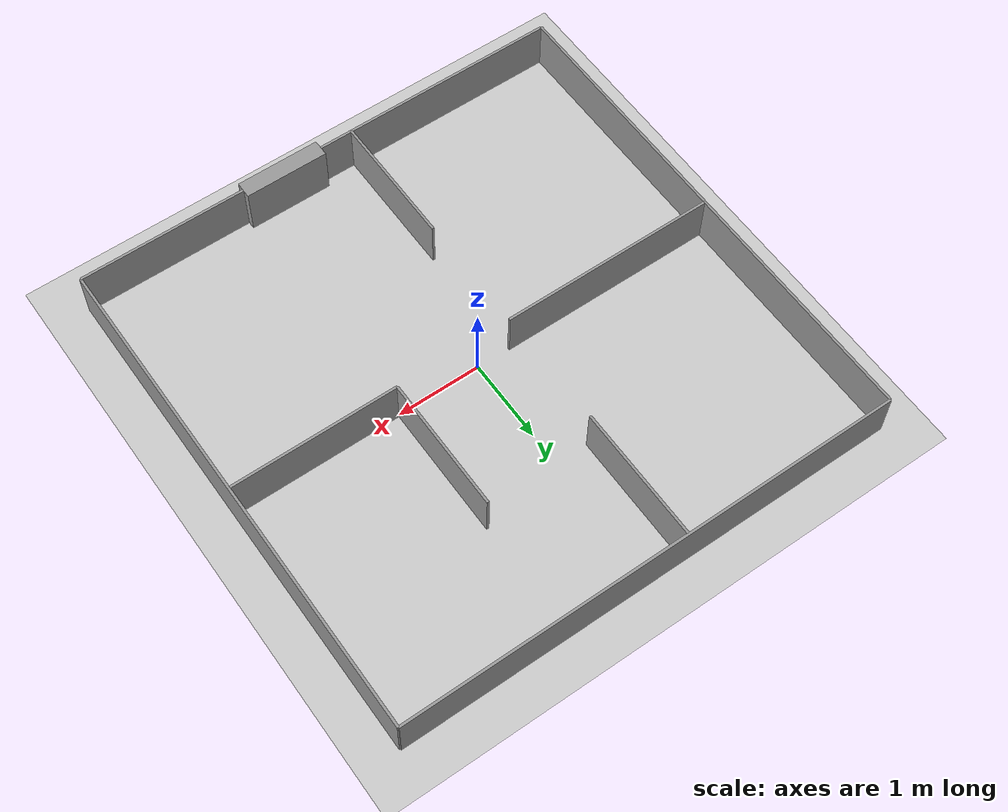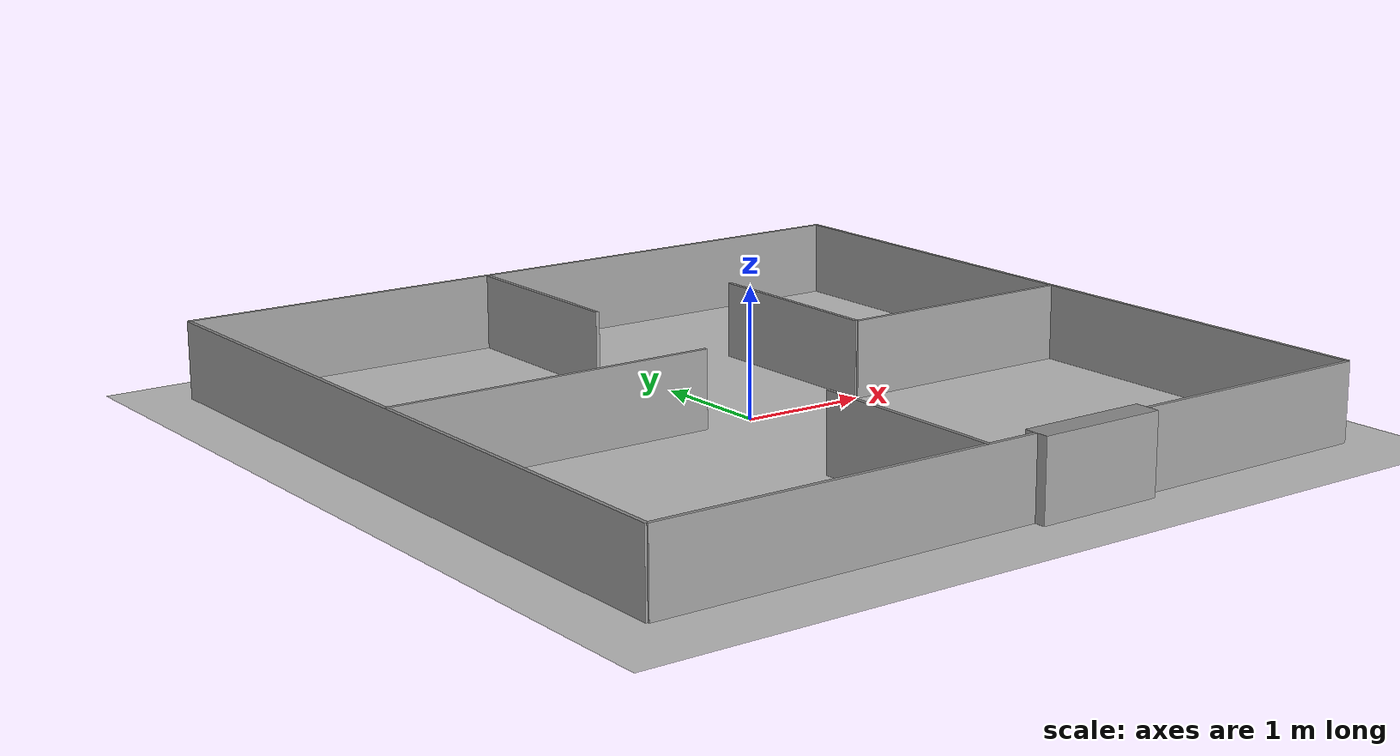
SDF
<?xml version="1.0" ?>

<sdf version="1.5">

  <world name="home-area">

    <!-- Engines: ode, bullet, simbody, dart-->

    <gui fullscreen='0'>
      <camera name='user_camera'>
        <pose frame=''>0 0 10 0 1.5708 0</pose>
        <view_controller>orbit</view_controller>
        <projection_type>perspective</projection_type>
      </camera>
    </gui>

    <physics type="ode">
      <max_step_size>0.001</max_step_size>
      <real_time_factor>1</real_time_factor>
      <real_time_update_rate>1000</real_time_update_rate>
      <gravity>0 0 -9.8</gravity>
    </physics>

    <include>
      <uri>model://sun</uri>
    </include>

    <include>
      <uri>model://ground_plane</uri>
    </include>

    <model name="home-area">
      <include>
        <uri>model://home-area</uri>
        <pose>0 0 0 0 0 0</pose>
      </include>
    </model>

  </world>

</sdf>

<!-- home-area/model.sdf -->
<sdf version='1.6'>
  <model name='home-area'>
    <pose frame=''>-0.022859 -0.01849 0 0 -0 0</pose>
    <link name='Door_0'>
      <collision name='Door_0_Collision'>
        <geometry>
          <box>
            <size>1 0.2 0.6</size>
          </box>
        </geometry>
        <pose frame=''>0 0 0.3 0 -0 0</pose>
      </collision>
      <visual name='Door_0_Visual'>
        <pose frame=''>0 0 0.3 0 -0 0</pose>
        <geometry>
          <box>
            <size>1 0.2 0.6</size>
          </box>
        </geometry>
        <material>
          <script>
            <uri>file://media/materials/scripts/gazebo.material</uri>
            <name>Gazebo/Grey</name>
          </script>
        </material>
      </visual>
      <pose frame=''>0.5 -3 0 0 0 0</pose>
    </link>
    <link name='Wall_0'>
      <collision name='Wall_0_Collision'>
        <geometry>
          <box>
            <size>2 0.03 0.6</size>
          </box>
        </geometry>
        <pose frame=''>0 0 0.3 0 -0 0</pose>
      </collision>
      <visual name='Wall_0_Visual'>
        <pose frame=''>0 0 0.3 0 -0 0</pose>
        <geometry>
          <box>
            <size>2 0.03 0.6</size>
          </box>
        </geometry>
        <material>
          <script>
            <uri>file://media/materials/scripts/gazebo.material</uri>
            <name>Gazebo/Grey</name>
          </script>
          <ambient>1 1 1 1</ambient>
        </material>
        <meta>
          <layer>0</layer>
        </meta>
      </visual>
      <pose frame=''>2 -3 0 0 0 3.14159</pose>
    </link>
    <link name='Wall_1'>
      <collision name='Wall_1_Collision'>
        <geometry>
          <box>
            <size>6 0.03 0.6</size>
          </box>
        </geometry>
        <pose frame=''>0 0 0.3 0 -0 0</pose>
      </collision>
      <visual name='Wall_1_Visual'>
        <pose frame=''>0 0 0.3 0 -0 0</pose>
        <geometry>
          <box>
            <size>6 0.03 0.6</size>
          </box>
        </geometry>
        <material>
          <script>
            <uri>file://media/materials/scripts/gazebo.material</uri>
            <name>Gazebo/Grey</name>
          </script>
          <ambient>1 1 1 1</ambient>
        </material>
        <meta>
          <layer>0</layer>
        </meta>
      </visual>
      <pose frame=''>3 0 0 0 0 -1.5708</pose>
    </link>
    <link name='Wall_10'>
      <collision name='Wall_10_Collision'>
        <geometry>
          <box>
            <size>2 0.03 0.6</size>
          </box>
        </geometry>
        <pose frame=''>0 0 0.3 0 -0 0</pose>
      </collision>
      <visual name='Wall_10_Visual'>
        <pose frame=''>0 0 0.3 0 -0 0</pose>
        <geometry>
          <box>
            <size>2 0.03 0.6</size>
          </box>
        </geometry>
        <material>
          <script>
            <uri>file://media/materials/scripts/gazebo.material</uri>
            <name>Gazebo/Grey</name>
          </script>
          <ambient>1 1 1 1</ambient>
        </material>
        <meta>
          <layer>0</layer>
        </meta>
      </visual>
      <pose frame=''>2 0 0 0 0 -3.14159</pose>
    </link>
    <link name='Wall_11'>
      <collision name='Wall_11_Collision'>
        <geometry>
          <box>
            <size>1.6 0.03 0.6</size>
          </box>
        </geometry>
        <pose frame=''>0 0 0.3 0 -0 0</pose>
      </collision>
      <visual name='Wall_11_Visual'>
        <pose frame=''>0 0 0.3 0 -0 0</pose>
        <geometry>
          <box>
            <size>1.6 0.03 0.6</size>
          </box>
        </geometry>
        <material>
          <script>
            <uri>file://media/materials/scripts/gazebo.material</uri>
            <name>Gazebo/Grey</name>
          </script>
          <ambient>1 1 1 1</ambient>
        </material>
        <meta>
          <layer>0</layer>
        </meta>
      </visual>
      <pose frame=''>1 0.8 0 0 0 1.5708</pose>
    </link>
    <link name='Wall_2'>
      <collision name='Wall_2_Collision'>
        <geometry>
          <box>
            <size>6 0.03 0.6</size>
          </box>
        </geometry>
        <pose frame=''>0 0 0.3 0 -0 0</pose>
      </collision>
      <visual name='Wall_2_Visual'>
        <pose frame=''>0 0 0.3 0 -0 0</pose>
        <geometry>
          <box>
            <size>6 0.03 0.6</size>
          </box>
        </geometry>
        <material>
          <script>
            <uri>file://media/materials/scripts/gazebo.material</uri>
            <name>Gazebo/Grey</name>
          </script>
          <ambient>1 1 1 1</ambient>
        </material>
        <meta>
          <layer>0</layer>
        </meta>
      </visual>
      <pose frame=''>0 3 0 0 0 0</pose>
    </link>
    <link name='Wall_20'>
      <collision name='Wall_20_Collision'>
        <geometry>
          <box>
            <size>1.6 0.03 0.6</size>
          </box>
        </geometry>
        <pose frame=''>0 0 0.3 0 -0 0</pose>
      </collision>
      <visual name='Wall_20_Visual'>
        <pose frame=''>0 0 0.3 0 -0 0</pose>
        <geometry>
          <box>
            <size>1.6 0.03 0.6</size>
          </box>
        </geometry>
        <material>
          <script>
            <uri>file://media/materials/scripts/gazebo.material</uri>
            <name>Gazebo/Grey</name>
          </script>
          <ambient>1 1 1 1</ambient>
        </material>
        <meta>
          <layer>0</layer>
        </meta>
      </visual>
      <pose frame=''>-0.4 2.2 0 0 0 1.5708</pose>
    </link>
    <link name='Wall_3'>
      <collision name='Wall_3_Collision'>
        <geometry>
          <box>
            <size>6 0.03 0.6</size>
          </box>
        </geometry>
        <pose frame=''>0 0 0.3 0 -0 0</pose>
      </collision>
      <visual name='Wall_3_Visual'>
        <pose frame=''>0 0 0.3 0 -0 0</pose>
        <geometry>
          <box>
            <size>6 0.03 0.6</size>
          </box>
        </geometry>
        <material>
          <script>
            <uri>file://media/materials/scripts/gazebo.material</uri>
            <name>Gazebo/Grey</name>
          </script>
          <ambient>1 1 1 1</ambient>
        </material>
        <meta>
          <layer>0</layer>
        </meta>
      </visual>
      <pose frame=''>-3 0 0 0 0 -1.5708</pose>
    </link>
    <link name='Wall_30'>
      <collision name='Wall_30_Collision'>
        <geometry>
          <box>
            <size>2.6 0.03 0.6</size>
          </box>
        </geometry>
        <pose frame=''>0 0 0.3 0 -0 0</pose>
      </collision>
      <visual name='Wall_30_Visual'>
        <pose frame=''>0 0 0.3 0 -0 0</pose>
        <geometry>
          <box>
            <size>2.6 0.03 0.6</size>
          </box>
        </geometry>
        <material>
          <script>
            <uri>file://media/materials/scripts/gazebo.material</uri>
            <name>Gazebo/Grey</name>
          </script>
          <ambient>1 1 1 1</ambient>
        </material>
        <meta>
          <layer>0</layer>
        </meta>
      </visual>
      <pose frame=''>-1.7 0 0 0 0 3.14159</pose>
    </link>
    <link name='Wall_4'>
      <collision name='Wall_4_Collision'>
        <geometry>
          <box>
            <size>3 0.03 0.6</size>
          </box>
        </geometry>
        <pose frame=''>0 0 0.3 0 -0 0</pose>
      </collision>
      <visual name='Wall_4_Visual'>
        <pose frame=''>0 0 0.3 0 -0 0</pose>
        <geometry>
          <box>
            <size>3 0.03 0.6</size>
          </box>
        </geometry>
        <material>
          <script>
            <uri>file://media/materials/scripts/gazebo.material</uri>
            <name>Gazebo/Grey</name>
          </script>
          <ambient>1 1 1 1</ambient>
        </material>
        <meta>
          <layer>0</layer>
        </meta>
      </visual>
      <pose frame=''>-1.5 -3 0 0 0 0</pose>
    </link>
    <link name='Wall_40'>
      <collision name='Wall_40_Collision'>
        <geometry>
          <box>
            <size>1.6 0.03 0.6</size>
          </box>
        </geometry>
        <pose frame=''>0 0 0.3 0 -0 0</pose>
      </collision>
      <visual name='Wall_40_Visual'>
        <pose frame=''>0 0 0.3 0 -0 0</pose>
        <geometry>
          <box>
            <size>1.6 0.03 0.6</size>
          </box>
        </geometry>
        <material>
          <script>
            <uri>file://media/materials/scripts/gazebo.material</uri>
            <name>Gazebo/Grey</name>
          </script>
          <ambient>1 1 1 1</ambient>
        </material>
        <meta>
          <layer>0</layer>
        </meta>
      </visual>
      <pose frame=''>-0.4 -2.2 0 0 0 1.5708</pose>
    </link>
    <static>1</static>
  </model>
</sdf>
